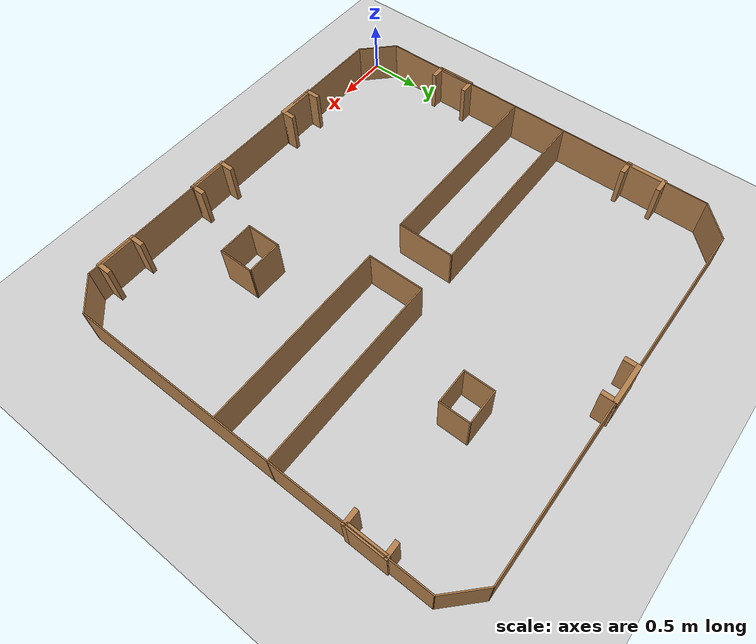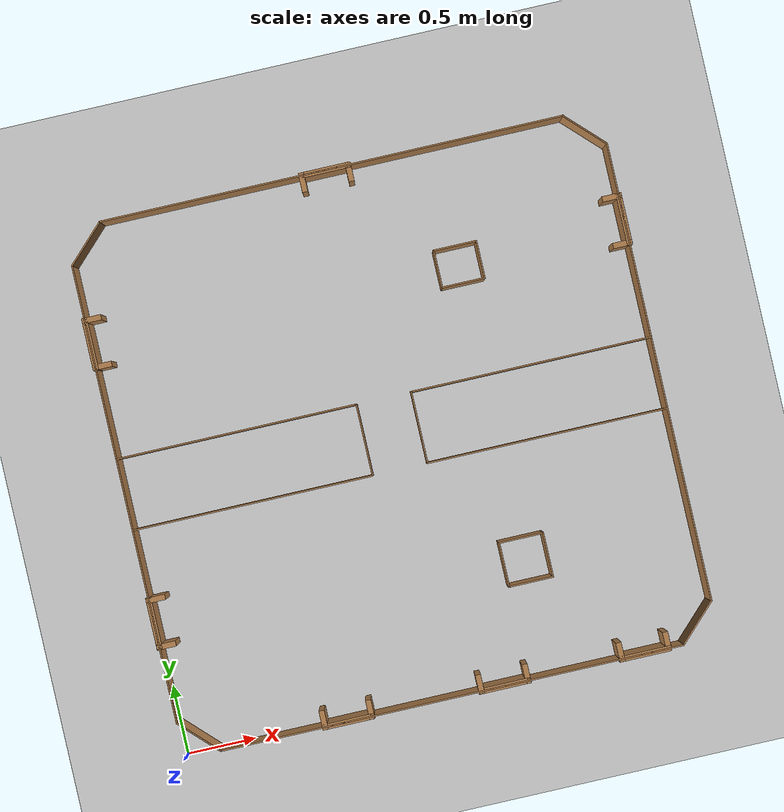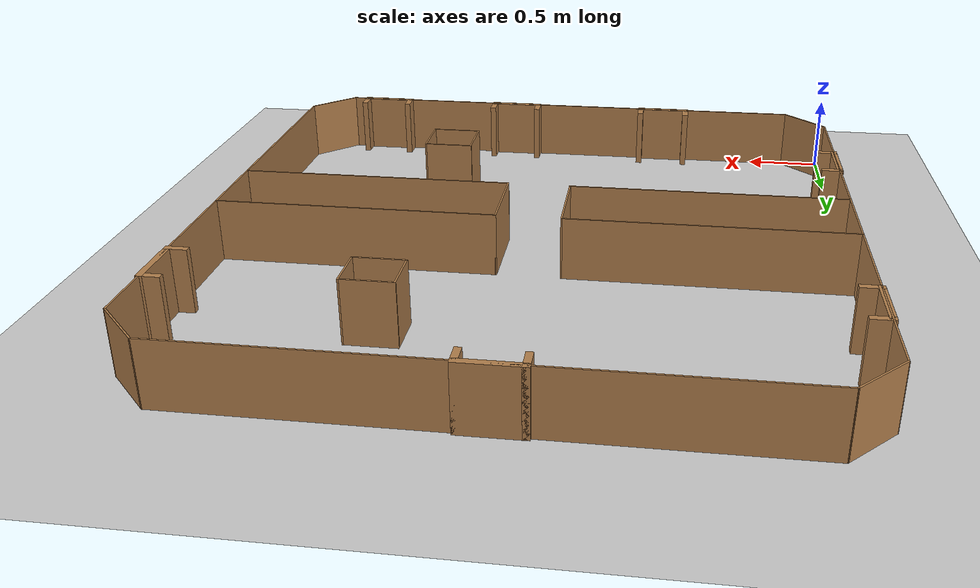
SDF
<sdf version="1.7">
 <world name="default">
  <light name="sun" type="directional">
   <pose>0 0 10 0 -0 0</pose>
   <diffuse>0.8 0.8 0.8 1</diffuse>
   <specular>0.2 0.2 0.2 1</specular>
   <attenuation>
    <range>1000</range>
    <constant>0.9</constant>
    <linear>0.01</linear>
    <quadratic>0.001</quadratic>
   </attenuation>
   <direction>-0.5 0.1 -0.9</direction>
   <spot><inner_angle>0</inner_angle><outer_angle>0</outer_angle><falloff>0</falloff></spot>
  </light>
  <model name="ground_plane">
   <static>1</static>
   <link name="link">
    <collision name="collision">
     <geometry><plane><normal>0 0 1</normal><size>100 100</size></plane></geometry>
     <surface><friction><ode><mu>100</mu><mu2>50</mu2></ode></friction></surface>
    </collision>
    <visual name="visual">
     <cast_shadows>0</cast_shadows>
     <geometry><plane><normal>0 0 1</normal><size>100 100</size></plane></geometry>
     <material>
      <script><uri>file://media/materials/scripts/gazebo.material</uri><name>Gazebo/Grey</name></script>
     </material>
    </visual>
   </link>
  </model>
  <gravity>0 0 -9.8</gravity>
  <magnetic_field>6e-06 2.3e-05 -4.2e-05</magnetic_field>
  <atmosphere type="adiabatic"/>
  <physics type="ode">
   <max_step_size>0.001</max_step_size>
   <real_time_factor>1</real_time_factor>
   <real_time_update_rate>1000</real_time_update_rate>
  </physics>
  <scene><ambient>0.4 0.4 0.4 1</ambient><background>0.7 0.7 0.7 1</background><shadows>1</shadows></scene>
  <audio><device>default</device></audio>
  <spherical_coordinates>
   <surface_model>EARTH_WGS84</surface_model>
   <latitude_deg>0</latitude_deg>
   <longitude_deg>0</longitude_deg>
   <elevation>0</elevation>
   <heading_deg>0</heading_deg>
  </spherical_coordinates>
  <model name="tec_warehouse">
   <pose>1.95 1.93 0 0 -0 0</pose>
   <link name="Wall_0">
    <collision name="Wall_0_Collision">
     <geometry><box><size>0.380524 0.01 0.4</size></box></geometry>
     <pose>0 0 0.2 0 -0 0</pose>
    </collision>
    <visual name="Wall_0_Visual">
     <pose>0 0 0.2 0 -0 0</pose>
     <geometry><box><size>0.380524 0.01 0.4</size></box></geometry>
     <material>
      <script><uri>file://media/materials/scripts/gazebo.material</uri><name>Gazebo/Wood</name></script>
      <ambient>1 0.764706 0.305882 1</ambient>
     </material>
     <meta><layer>0</layer></meta>
    </visual>
    <pose>-1.819 -1.799 0 0 -0 -0.785398</pose>
   </link>
   <link name="Wall_1">
    <collision name="Wall_1_Collision">
     <geometry><box><size>3.386 0.01 0.4</size></box></geometry>
     <pose>0 0 0.2 0 -0 0</pose>
    </collision>
    <visual name="Wall_1_Visual">
     <pose>0 0 0.2 0 -0 0</pose>
     <geometry><box><size>3.386 0.01 0.4</size></box></geometry>
     <material>
      <script><uri>file://media/materials/scripts/gazebo.material</uri><name>Gazebo/Wood</name></script>
      <ambient>1 0.764706 0.305882 1</ambient>
     </material>
     <meta><layer>0</layer></meta>
    </visual>
    <pose>0 -1.93 0 0 -0 0</pose>
   </link>
   <link name="Wall_10">
    <collision name="Wall_10_Collision">
     <geometry><box><size>0.530096 0.01 0.4</size></box></geometry>
     <pose>0 0 0.2 0 -0 0</pose>
    </collision>
    <visual name="Wall_10_Visual">
     <pose>0 0 0.2 0 -0 0</pose>
     <geometry><box><size>0.530096 0.01 0.4</size></box></geometry>
     <material>
      <script><uri>file://media/materials/scripts/gazebo.material</uri><name>Gazebo/Wood</name></script>
      <ambient>1 0.764706 0.305882 1</ambient>
     </material>
     <meta><layer>0</layer></meta>
    </visual>
    <pose>-0.2 -0.003 0 0 -0 1.5708</pose>
   </link>
   <link name="Wall_11">
    <collision name="Wall_11_Collision">
     <geometry><box><size>1.76 0.01 0.4</size></box></geometry>
     <pose>0 0 0.2 0 -0 0</pose>
    </collision>
    <visual name="Wall_11_Visual">
     <pose>0 0 0.2 0 -0 0</pose>
     <geometry><box><size>1.76 0.01 0.4</size></box></geometry>
     <material>
      <script><uri>file://media/materials/scripts/gazebo.material</uri><name>Gazebo/Wood</name></script>
      <ambient>1 0.764706 0.305882 1</ambient>
     </material>
     <meta><layer>0</layer></meta>
    </visual>
    <pose>-1.075 0.257 0 0 -0 3.14159</pose>
   </link>
   <link name="Wall_13">
    <collision name="Wall_13_Collision">
     <geometry><box><size>1.76 0.01 0.4</size></box></geometry>
     <pose>0 0 0.2 0 -0 0</pose>
    </collision>
    <visual name="Wall_13_Visual">
     <pose>0 0 0.2 0 -0 0</pose>
     <geometry><box><size>1.76 0.01 0.4</size></box></geometry>
     <material>
      <script><uri>file://media/materials/scripts/gazebo.material</uri><name>Gazebo/Wood</name></script>
      <ambient>1 0.764706 0.305882 1</ambient>
     </material>
     <meta><layer>0</layer></meta>
    </visual>
    <pose>1.075 -0.263 0 0 -0 3.14159</pose>
   </link>
   <link name="Wall_14">
    <collision name="Wall_14_Collision">
     <geometry><box><size>0.53 0.01 0.4</size></box></geometry>
     <pose>0 0 0.2 0 -0 0</pose>
    </collision>
    <visual name="Wall_14_Visual">
     <pose>0 0 0.2 0 -0 0</pose>
     <geometry><box><size>0.53 0.01 0.4</size></box></geometry>
     <material>
      <script><uri>file://media/materials/scripts/gazebo.material</uri><name>Gazebo/Wood</name></script>
      <ambient>1 0.764706 0.305882 1</ambient>
     </material>
     <meta><layer>0</layer></meta>
    </visual>
    <pose>0.2 -0.003 0 0 -0 1.5708</pose>
   </link>
   <link name="Wall_15">
    <collision name="Wall_15_Collision">
     <geometry><box><size>1.76 0.01 0.4</size></box></geometry>
     <pose>0 0 0.2 0 -0 0</pose>
    </collision>
    <visual name="Wall_15_Visual">
     <pose>0 0 0.2 0 -0 0</pose>
     <geometry><box><size>1.76 0.01 0.4</size></box></geometry>
     <material>
      <script><uri>file://media/materials/scripts/gazebo.material</uri><name>Gazebo/Wood</name></script>
      <ambient>1 0.764706 0.305882 1</ambient>
     </material>
     <meta><layer>0</layer></meta>
    </visual>
    <pose>1.075 0.257 0 0 -0 0</pose>
   </link>
   <link name="Wall_17">
    <collision name="Wall_17_Collision">
     <geometry><box><size>0.32 0.01 0.4</size></box></geometry>
     <pose>0 0 0.2 0 -0 0</pose>
    </collision>
    <visual name="Wall_17_Visual">
     <pose>0 0 0.2 0 -0 0</pose>
     <geometry><box><size>0.32 0.01 0.4</size></box></geometry>
     <material>
      <script><uri>file://media/materials/scripts/gazebo.material</uri><name>Gazebo/Wood</name></script>
      <ambient>1 0.764706 0.305882 1</ambient>
     </material>
     <meta><layer>0</layer></meta>
    </visual>
    <pose>0.735 0.93 0 0 -0 0</pose>
   </link>
   <link name="Wall_18">
    <collision name="Wall_18_Collision">
     <geometry><box><size>0.28 0.01 0.4</size></box></geometry>
     <pose>0 0 0.2 0 -0 0</pose>
    </collision>
    <visual name="Wall_18_Visual">
     <pose>0 0 0.2 0 -0 0</pose>
     <geometry><box><size>0.28 0.01 0.4</size></box></geometry>
     <material>
      <script><uri>file://media/materials/scripts/gazebo.material</uri><name>Gazebo/Wood</name></script>
      <ambient>1 0.764706 0.305882 1</ambient>
     </material>
     <meta><layer>0</layer></meta>
    </visual>
    <pose>0.89 1.065 0 0 -0 1.5708</pose>
   </link>
   <link name="Wall_19">
    <collision name="Wall_19_Collision">
     <geometry><box><size>0.32 0.01 0.4</size></box></geometry>
     <pose>0 0 0.2 0 -0 0</pose>
    </collision>
    <visual name="Wall_19_Visual">
     <pose>0 0 0.2 0 -0 0</pose>
     <geometry><box><size>0.32 0.01 0.4</size></box></geometry>
     <material>
      <script><uri>file://media/materials/scripts/gazebo.material</uri><name>Gazebo/Wood</name></script>
      <ambient>1 0.764706 0.305882 1</ambient>
     </material>
     <meta><layer>0</layer></meta>
    </visual>
    <pose>0.735 1.2 0 0 -0 3.14159</pose>
   </link>
   <link name="Wall_2">
    <collision name="Wall_2_Collision">
     <geometry><box><size>0.380524 0.01 0.4</size></box></geometry>
     <pose>0 0 0.2 0 -0 0</pose>
    </collision>
    <visual name="Wall_2_Visual">
     <pose>0 0 0.2 0 -0 0</pose>
     <geometry><box><size>0.380524 0.01 0.4</size></box></geometry>
     <material>
      <script><uri>file://media/materials/scripts/gazebo.material</uri><name>Gazebo/Wood</name></script>
      <ambient>1 0.764706 0.305882 1</ambient>
     </material>
     <meta><layer>0</layer></meta>
    </visual>
    <pose>1.819 -1.799 0 0 -0 0.785398</pose>
   </link>
   <link name="Wall_20">
    <collision name="Wall_20_Collision">
     <geometry><box><size>0.28 0.01 0.4</size></box></geometry>
     <pose>0 0 0.2 0 -0 0</pose>
    </collision>
    <visual name="Wall_20_Visual">
     <pose>0 0 0.2 0 -0 0</pose>
     <geometry><box><size>0.28 0.01 0.4</size></box></geometry>
     <material>
      <script><uri>file://media/materials/scripts/gazebo.material</uri><name>Gazebo/Wood</name></script>
      <ambient>1 0.764706 0.305882 1</ambient>
     </material>
     <meta><layer>0</layer></meta>
    </visual>
    <pose>0.58 1.065 0 0 -0 -1.5708</pose>
   </link>
   <link name="Wall_22">
    <collision name="Wall_22_Collision">
     <geometry><box><size>0.33 0.01 0.4</size></box></geometry>
     <pose>0 0 0.2 0 -0 0</pose>
    </collision>
    <visual name="Wall_22_Visual">
     <pose>0 0 0.2 0 -0 0</pose>
     <geometry><box><size>0.33 0.01 0.4</size></box></geometry>
     <material>
      <script><uri>file://media/materials/scripts/gazebo.material</uri><name>Gazebo/Wood</name></script>
      <ambient>1 0.764706 0.305882 1</ambient>
     </material>
     <meta><layer>0</layer></meta>
    </visual>
    <pose>0.73 -1.25 0 0 -0 0</pose>
   </link>
   <link name="Wall_23">
    <collision name="Wall_23_Collision">
     <geometry><box><size>0.330025 0.01 0.4</size></box></geometry>
     <pose>0 0 0.2 0 -0 0</pose>
    </collision>
    <visual name="Wall_23_Visual">
     <pose>0 0 0.2 0 -0 0</pose>
     <geometry><box><size>0.330025 0.01 0.4</size></box></geometry>
     <material>
      <script><uri>file://media/materials/scripts/gazebo.material</uri><name>Gazebo/Wood</name></script>
      <ambient>1 0.764706 0.305882 1</ambient>
     </material>
     <meta><layer>0</layer></meta>
    </visual>
    <pose>0.89 -1.09 0 0 -0 1.5708</pose>
   </link>
   <link name="Wall_24">
    <collision name="Wall_24_Collision">
     <geometry><box><size>0.33 0.01 0.4</size></box></geometry>
     <pose>0 0 0.2 0 -0 0</pose>
    </collision>
    <visual name="Wall_24_Visual">
     <pose>0 0 0.2 0 -0 0</pose>
     <geometry><box><size>0.33 0.01 0.4</size></box></geometry>
     <material>
      <script><uri>file://media/materials/scripts/gazebo.material</uri><name>Gazebo/Wood</name></script>
      <ambient>1 0.764706 0.305882 1</ambient>
     </material>
     <meta><layer>0</layer></meta>
    </visual>
    <pose>0.73 -0.93 0 0 -0 3.14159</pose>
   </link>
   <link name="Wall_25">
    <collision name="Wall_25_Collision">
     <geometry><box><size>0.33 0.01 0.4</size></box></geometry>
     <pose>0 0 0.2 0 -0 0</pose>
    </collision>
    <visual name="Wall_25_Visual">
     <pose>0 0 0.2 0 -0 0</pose>
     <geometry><box><size>0.33 0.01 0.4</size></box></geometry>
     <material>
      <script><uri>file://media/materials/scripts/gazebo.material</uri><name>Gazebo/Wood</name></script>
      <ambient>1 0.764706 0.305882 1</ambient>
     </material>
     <meta><layer>0</layer></meta>
    </visual>
    <pose>0.57 -1.09 0 0 -0 -1.5708</pose>
   </link>
   <link name="Wall_3">
    <collision name="Wall_3_Collision">
     <geometry><box><size>3.346 0.01 0.4</size></box></geometry>
     <pose>0 0 0.2 0 -0 0</pose>
    </collision>
    <visual name="Wall_3_Visual">
     <pose>0 0 0.2 0 -0 0</pose>
     <geometry><box><size>3.346 0.01 0.4</size></box></geometry>
     <material>
      <script><uri>file://media/materials/scripts/gazebo.material</uri><name>Gazebo/Wood</name></script>
      <ambient>1 0.764706 0.305882 1</ambient>
     </material>
     <meta><layer>0</layer></meta>
    </visual>
    <pose>1.95 0 0 0 -0 1.5708</pose>
   </link>
   <link name="Wall_31">
    <collision name="Wall_31_Collision">
     <geometry><box><size>0.14 0.04 0.4</size></box></geometry>
     <pose>0 0 0.2 0 -0 0</pose>
    </collision>
    <visual name="Wall_31_Visual">
     <pose>0 0 0.2 0 -0 0</pose>
     <geometry><box><size>0.14 0.04 0.4</size></box></geometry>
     <material>
      <script><uri>file://media/materials/scripts/gazebo.material</uri><name>Gazebo/Wood</name></script>
      <ambient>0.435294 0.796078 0.67451 1</ambient>
     </material>
     <meta><layer>0</layer></meta>
    </visual>
    <pose>-0.928 -1.88 0 0 -0 -1.5708</pose>
   </link>
   <link name="Wall_32">
    <collision name="Wall_32_Collision">
     <geometry><box><size>0.38 0.04 0.4</size></box></geometry>
     <pose>0 0 0.2 0 -0 0</pose>
    </collision>
    <visual name="Wall_32_Visual">
     <pose>0 0 0.2 0 -0 0</pose>
     <geometry><box><size>0.38 0.04 0.4</size></box></geometry>
     <material>
      <script><uri>file://media/materials/scripts/gazebo.material</uri><name>Gazebo/Wood</name></script>
      <ambient>0.435294 0.796078 0.67451 1</ambient>
     </material>
     <meta><layer>0</layer></meta>
    </visual>
    <pose>-0.758 -1.93 0 0 -0 0</pose>
   </link>
   <link name="Wall_33">
    <collision name="Wall_33_Collision">
     <geometry><box><size>0.14 0.04 0.4</size></box></geometry>
     <pose>0 0 0.2 0 -0 0</pose>
    </collision>
    <visual name="Wall_33_Visual">
     <pose>0 0 0.2 0 -0 0</pose>
     <geometry><box><size>0.14 0.04 0.4</size></box></geometry>
     <material>
      <script><uri>file://media/materials/scripts/gazebo.material</uri><name>Gazebo/Wood</name></script>
      <ambient>0.435294 0.796078 0.67451 1</ambient>
     </material>
     <meta><layer>0</layer></meta>
    </visual>
    <pose>-0.588 -1.88 0 0 -0 1.5708</pose>
   </link>
   <link name="Wall_35">
    <collision name="Wall_35_Collision">
     <geometry><box><size>0.14 0.04 0.4</size></box></geometry>
     <pose>0 0 0.2 0 -0 0</pose>
    </collision>
    <visual name="Wall_35_Visual">
     <pose>0 0 0.2 0 -0 0</pose>
     <geometry><box><size>0.14 0.04 0.4</size></box></geometry>
     <material>
      <script><uri>file://media/materials/scripts/gazebo.material</uri><name>Gazebo/Wood</name></script>
      <ambient>0.435294 0.796078 0.67451 1</ambient>
     </material>
     <meta><layer>0</layer></meta>
    </visual>
    <pose>-0.218 1.88 0 0 -0 1.5708</pose>
   </link>
   <link name="Wall_36">
    <collision name="Wall_36_Collision">
     <geometry><box><size>0.38 0.04 0.4</size></box></geometry>
     <pose>0 0 0.2 0 -0 0</pose>
    </collision>
    <visual name="Wall_36_Visual">
     <pose>0 0 0.2 0 -0 0</pose>
     <geometry><box><size>0.38 0.04 0.4</size></box></geometry>
     <material>
      <script><uri>file://media/materials/scripts/gazebo.material</uri><name>Gazebo/Wood</name></script>
      <ambient>0.435294 0.796078 0.67451 1</ambient>
     </material>
     <meta><layer>0</layer></meta>
    </visual>
    <pose>-0.048 1.93 0 0 -0 0</pose>
   </link>
   <link name="Wall_37">
    <collision name="Wall_37_Collision">
     <geometry><box><size>0.14 0.04 0.4</size></box></geometry>
     <pose>0 0 0.2 0 -0 0</pose>
    </collision>
    <visual name="Wall_37_Visual">
     <pose>0 0 0.2 0 -0 0</pose>
     <geometry><box><size>0.14 0.04 0.4</size></box></geometry>
     <material>
      <script><uri>file://media/materials/scripts/gazebo.material</uri><name>Gazebo/Wood</name></script>
      <ambient>0.435294 0.796078 0.67451 1</ambient>
     </material>
     <meta><layer>0</layer></meta>
    </visual>
    <pose>0.122 1.88 0 0 -0 -1.5708</pose>
   </link>
   <link name="Wall_4">
    <collision name="Wall_4_Collision">
     <geometry><box><size>0.380524 0.01 0.4</size></box></geometry>
     <pose>0 0 0.2 0 -0 0</pose>
    </collision>
    <visual name="Wall_4_Visual">
     <pose>0 0 0.2 0 -0 0</pose>
     <geometry><box><size>0.380524 0.01 0.4</size></box></geometry>
     <material>
      <script><uri>file://media/materials/scripts/gazebo.material</uri><name>Gazebo/Wood</name></script>
      <ambient>1 0.764706 0.305882 1</ambient>
     </material>
     <meta><layer>0</layer></meta>
    </visual>
    <pose>1.819 1.799 0 0 -0 2.35619</pose>
   </link>
   <link name="Wall_43">
    <collision name="Wall_43_Collision">
     <geometry><box><size>0.14 0.04 0.4</size></box></geometry>
     <pose>0 0 0.2 0 -0 0</pose>
    </collision>
    <visual name="Wall_43_Visual">
     <pose>0 0 0.2 0 -0 0</pose>
     <geometry><box><size>0.14 0.04 0.4</size></box></geometry>
     <material>
      <script><uri>file://media/materials/scripts/gazebo.material</uri><name>Gazebo/Wood</name></script>
      <ambient>0.435294 0.796078 0.67451 1</ambient>
     </material>
     <meta><layer>0</layer></meta>
    </visual>
    <pose>-1.9 1.267 0 0 -0 3.14159</pose>
   </link>
   <link name="Wall_44">
    <collision name="Wall_44_Collision">
     <geometry><box><size>0.38 0.04 0.4</size></box></geometry>
     <pose>0 0 0.2 0 -0 0</pose>
    </collision>
    <visual name="Wall_44_Visual">
     <pose>0 0 0.2 0 -0 0</pose>
     <geometry><box><size>0.38 0.04 0.4</size></box></geometry>
     <material>
      <script><uri>file://media/materials/scripts/gazebo.material</uri><name>Gazebo/Wood</name></script>
      <ambient>0.435294 0.796078 0.67451 1</ambient>
     </material>
     <meta><layer>0</layer></meta>
    </visual>
    <pose>-1.95 1.097 0 0 -0 -1.5708</pose>
   </link>
   <link name="Wall_45">
    <collision name="Wall_45_Collision">
     <geometry><box><size>0.14 0.04 0.4</size></box></geometry>
     <pose>0 0 0.2 0 -0 0</pose>
    </collision>
    <visual name="Wall_45_Visual">
     <pose>0 0 0.2 0 -0 0</pose>
     <geometry><box><size>0.14 0.04 0.4</size></box></geometry>
     <material>
      <script><uri>file://media/materials/scripts/gazebo.material</uri><name>Gazebo/Wood</name></script>
      <ambient>0.435294 0.796078 0.67451 1</ambient>
     </material>
     <meta><layer>0</layer></meta>
    </visual>
    <pose>-1.9 0.927 0 0 -0 0</pose>
   </link>
   <link name="Wall_47">
    <collision name="Wall_47_Collision">
     <geometry><box><size>0.14 0.04 0.4</size></box></geometry>
     <pose>0 0 0.2 0 -0 0</pose>
    </collision>
    <visual name="Wall_47_Visual">
     <pose>0 0 0.2 0 -0 0</pose>
     <geometry><box><size>0.14 0.04 0.4</size></box></geometry>
     <material>
      <script><uri>file://media/materials/scripts/gazebo.material</uri><name>Gazebo/Wood</name></script>
      <ambient>0.435294 0.796078 0.67451 1</ambient>
     </material>
     <meta><layer>0</layer></meta>
    </visual>
    <pose>1.9 1.287 0 0 -0 0</pose>
   </link>
   <link name="Wall_48">
    <collision name="Wall_48_Collision">
     <geometry><box><size>0.38 0.04 0.4</size></box></geometry>
     <pose>0 0 0.2 0 -0 0</pose>
    </collision>
    <visual name="Wall_48_Visual">
     <pose>0 0 0.2 0 -0 0</pose>
     <geometry><box><size>0.38 0.04 0.4</size></box></geometry>
     <material>
      <script><uri>file://media/materials/scripts/gazebo.material</uri><name>Gazebo/Wood</name></script>
      <ambient>0.435294 0.796078 0.67451 1</ambient>
     </material>
     <meta><layer>0</layer></meta>
    </visual>
    <pose>1.95 1.117 0 0 -0 -1.5708</pose>
   </link>
   <link name="Wall_49">
    <collision name="Wall_49_Collision">
     <geometry><box><size>0.14 0.04 0.4</size></box></geometry>
     <pose>0 0 0.2 0 -0 0</pose>
    </collision>
    <visual name="Wall_49_Visual">
     <pose>0 0 0.2 0 -0 0</pose>
     <geometry><box><size>0.14 0.04 0.4</size></box></geometry>
     <material>
      <script><uri>file://media/materials/scripts/gazebo.material</uri><name>Gazebo/Wood</name></script>
      <ambient>0.435294 0.796078 0.67451 1</ambient>
     </material>
     <meta><layer>0</layer></meta>
    </visual>
    <pose>1.9 0.947 0 0 -0 3.14159</pose>
   </link>
   <link name="Wall_5">
    <collision name="Wall_5_Collision">
     <geometry><box><size>3.386 0.01 0.4</size></box></geometry>
     <pose>0 0 0.2 0 -0 0</pose>
    </collision>
    <visual name="Wall_5_Visual">
     <pose>0 0 0.2 0 -0 0</pose>
     <geometry><box><size>3.386 0.01 0.4</size></box></geometry>
     <material>
      <script><uri>file://media/materials/scripts/gazebo.material</uri><name>Gazebo/Wood</name></script>
      <ambient>1 0.764706 0.305882 1</ambient>
     </material>
     <meta><layer>0</layer></meta>
    </visual>
    <pose>0 1.93 0 0 -0 3.14159</pose>
   </link>
   <link name="Wall_51">
    <collision name="Wall_51_Collision">
     <geometry><box><size>0.14 0.04 0.4</size></box></geometry>
     <pose>0 0 0.2 0 -0 0</pose>
    </collision>
    <visual name="Wall_51_Visual">
     <pose>0 0 0.2 0 -0 0</pose>
     <geometry><box><size>0.14 0.04 0.4</size></box></geometry>
     <material>
      <script><uri>file://media/materials/scripts/gazebo.material</uri><name>Gazebo/Wood</name></script>
      <ambient>0.435294 0.796078 0.67451 1</ambient>
     </material>
     <meta><layer>0</layer></meta>
    </visual>
    <pose>-1.9 -0.773 0 0 -0 3.14159</pose>
   </link>
   <link name="Wall_52">
    <collision name="Wall_52_Collision">
     <geometry><box><size>0.38 0.04 0.4</size></box></geometry>
     <pose>0 0 0.2 0 -0 0</pose>
    </collision>
    <visual name="Wall_52_Visual">
     <pose>0 0 0.2 0 -0 0</pose>
     <geometry><box><size>0.38 0.04 0.4</size></box></geometry>
     <material>
      <script><uri>file://media/materials/scripts/gazebo.material</uri><name>Gazebo/Wood</name></script>
      <ambient>0.435294 0.796078 0.67451 1</ambient>
     </material>
     <meta><layer>0</layer></meta>
    </visual>
    <pose>-1.95 -0.943 0 0 -0 -1.5708</pose>
   </link>
   <link name="Wall_53">
    <collision name="Wall_53_Collision">
     <geometry><box><size>0.14 0.04 0.4</size></box></geometry>
     <pose>0 0 0.2 0 -0 0</pose>
    </collision>
    <visual name="Wall_53_Visual">
     <pose>0 0 0.2 0 -0 0</pose>
     <geometry><box><size>0.14 0.04 0.4</size></box></geometry>
     <material>
      <script><uri>file://media/materials/scripts/gazebo.material</uri><name>Gazebo/Wood</name></script>
      <ambient>0.435294 0.796078 0.67451 1</ambient>
     </material>
     <meta><layer>0</layer></meta>
    </visual>
    <pose>-1.9 -1.113 0 0 -0 0</pose>
   </link>
   <link name="Wall_55">
    <collision name="Wall_55_Collision">
     <geometry><box><size>0.14 0.04 0.4</size></box></geometry>
     <pose>0 0 0.2 0 -0 0</pose>
    </collision>
    <visual name="Wall_55_Visual">
     <pose>0 0 0.2 0 -0 0</pose>
     <geometry><box><size>0.14 0.04 0.4</size></box></geometry>
     <material>
      <script><uri>file://media/materials/scripts/gazebo.material</uri><name>Gazebo/Wood</name></script>
      <ambient>0.435294 0.796078 0.67451 1</ambient>
     </material>
     <meta><layer>0</layer></meta>
    </visual>
    <pose>1.238 -1.88 0 0 -0 -1.5708</pose>
   </link>
   <link name="Wall_56">
    <collision name="Wall_56_Collision">
     <geometry><box><size>0.38 0.04 0.4</size></box></geometry>
     <pose>0 0 0.2 0 -0 0</pose>
    </collision>
    <visual name="Wall_56_Visual">
     <pose>0 0 0.2 0 -0 0</pose>
     <geometry><box><size>0.38 0.04 0.4</size></box></geometry>
     <material>
      <script><uri>file://media/materials/scripts/gazebo.material</uri><name>Gazebo/Wood</name></script>
      <ambient>0.435294 0.796078 0.67451 1</ambient>
     </material>
     <meta><layer>0</layer></meta>
    </visual>
    <pose>1.408 -1.93 0 0 -0 0</pose>
   </link>
   <link name="Wall_57">
    <collision name="Wall_57_Collision">
     <geometry><box><size>0.14 0.04 0.4</size></box></geometry>
     <pose>0 0 0.2 0 -0 0</pose>
    </collision>
    <visual name="Wall_57_Visual">
     <pose>0 0 0.2 0 -0 0</pose>
     <geometry><box><size>0.14 0.04 0.4</size></box></geometry>
     <material>
      <script><uri>file://media/materials/scripts/gazebo.material</uri><name>Gazebo/Wood</name></script>
      <ambient>0.435294 0.796078 0.67451 1</ambient>
     </material>
     <meta><layer>0</layer></meta>
    </visual>
    <pose>1.578 -1.88 0 0 -0 1.5708</pose>
   </link>
   <link name="Wall_59">
    <collision name="Wall_59_Collision">
     <geometry><box><size>0.14 0.04 0.4</size></box></geometry>
     <pose>0 0 0.2 0 -0 0</pose>
    </collision>
    <visual name="Wall_59_Visual">
     <pose>0 0 0.2 0 -0 0</pose>
     <geometry><box><size>0.14 0.04 0.4</size></box></geometry>
     <material>
      <script><uri>file://media/materials/scripts/gazebo.material</uri><name>Gazebo/Wood</name></script>
      <ambient>0.435294 0.796078 0.67451 1</ambient>
     </material>
     <meta><layer>0</layer></meta>
    </visual>
    <pose>0.213 -1.88 0 0 -0 -1.5708</pose>
   </link>
   <link name="Wall_6">
    <collision name="Wall_6_Collision">
     <geometry><box><size>0.380524 0.01 0.4</size></box></geometry>
     <pose>0 0 0.2 0 -0 0</pose>
    </collision>
    <visual name="Wall_6_Visual">
     <pose>0 0 0.2 0 -0 0</pose>
     <geometry><box><size>0.380524 0.01 0.4</size></box></geometry>
     <material>
      <script><uri>file://media/materials/scripts/gazebo.material</uri><name>Gazebo/Wood</name></script>
      <ambient>1 0.764706 0.305882 1</ambient>
     </material>
     <meta><layer>0</layer></meta>
    </visual>
    <pose>-1.819 1.799 0 0 -0 -2.35619</pose>
   </link>
   <link name="Wall_60">
    <collision name="Wall_60_Collision">
     <geometry><box><size>0.38 0.04 0.4</size></box></geometry>
     <pose>0 0 0.2 0 -0 0</pose>
    </collision>
    <visual name="Wall_60_Visual">
     <pose>0 0 0.2 0 -0 0</pose>
     <geometry><box><size>0.38 0.04 0.4</size></box></geometry>
     <material>
      <script><uri>file://media/materials/scripts/gazebo.material</uri><name>Gazebo/Wood</name></script>
      <ambient>0.435294 0.796078 0.67451 1</ambient>
     </material>
     <meta><layer>0</layer></meta>
    </visual>
    <pose>0.383 -1.93 0 0 -0 0</pose>
   </link>
   <link name="Wall_61">
    <collision name="Wall_61_Collision">
     <geometry><box><size>0.14 0.04 0.4</size></box></geometry>
     <pose>0 0 0.2 0 -0 0</pose>
    </collision>
    <visual name="Wall_61_Visual">
     <pose>0 0 0.2 0 -0 0</pose>
     <geometry><box><size>0.14 0.04 0.4</size></box></geometry>
     <material>
      <script><uri>file://media/materials/scripts/gazebo.material</uri><name>Gazebo/Wood</name></script>
      <ambient>0.435294 0.796078 0.67451 1</ambient>
     </material>
     <meta><layer>0</layer></meta>
    </visual>
    <pose>0.553 -1.88 0 0 -0 1.5708</pose>
   </link>
   <link name="Wall_7">
    <collision name="Wall_7_Collision">
     <geometry><box><size>3.346 0.01 0.4</size></box></geometry>
     <pose>0 0 0.2 0 -0 0</pose>
    </collision>
    <visual name="Wall_7_Visual">
     <pose>0 0 0.2 0 -0 0</pose>
     <geometry><box><size>3.346 0.01 0.4</size></box></geometry>
     <material>
      <script><uri>file://media/materials/scripts/gazebo.material</uri><name>Gazebo/Wood</name></script>
      <ambient>1 0.764706 0.305882 1</ambient>
     </material>
     <meta><layer>0</layer></meta>
    </visual>
    <pose>-1.95 0 0 0 -0 -1.5708</pose>
   </link>
   <link name="Wall_9">
    <collision name="Wall_9_Collision">
     <geometry><box><size>1.76 0.01 0.4</size></box></geometry>
     <pose>0 0 0.2 0 -0 0</pose>
    </collision>
    <visual name="Wall_9_Visual">
     <pose>0 0 0.2 0 -0 0</pose>
     <geometry><box><size>1.76 0.01 0.4</size></box></geometry>
     <material>
      <script><uri>file://media/materials/scripts/gazebo.material</uri><name>Gazebo/Wood</name></script>
      <ambient>1 0.764706 0.305882 1</ambient>
     </material>
     <meta><layer>0</layer></meta>
    </visual>
    <pose>-1.075 -0.263 0 0 -0 0</pose>
   </link>
   <static>1</static>
  </model>
 </world>
</sdf>
